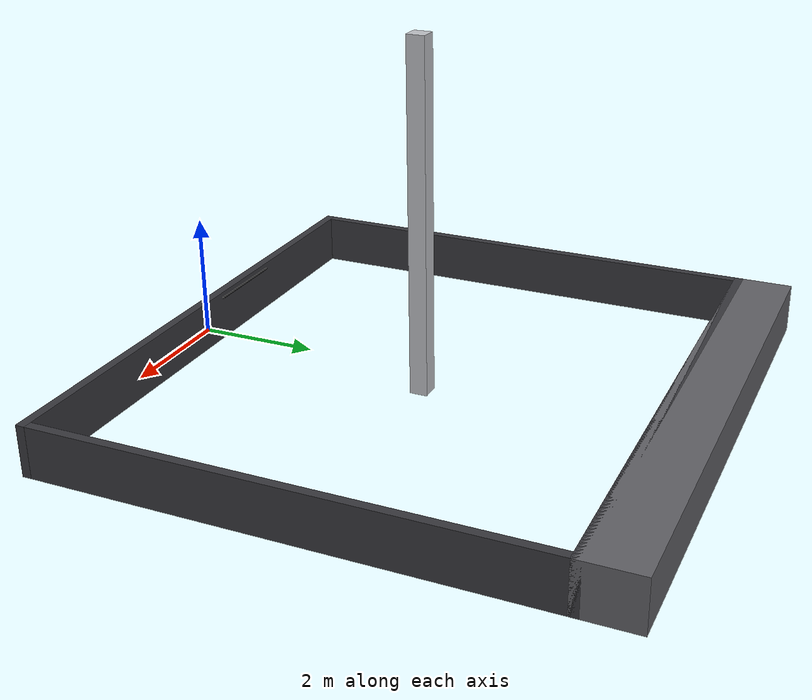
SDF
<?xml version='1.0'?>
<sdf version='1.8'>
  <model name='lunabotics_arena'>
    <pose>0 0 0 0 0 0</pose>
    <static>true</static>

    <!-- Front (south) wall: carries the 80/20 fiducial rail, Y = 0 -->
    <link name='Wall_S'>
      <pose>0 -0.075 0.075 0 0 0</pose>
      <collision name='Wall_S_Collision'>
        <geometry>
          <box>
            <size>9.44 0.15 0.85</size>
          </box>
        </geometry>
      </collision>
      <visual name='Wall_S_Visual'>
        <geometry>
          <box>
            <size>9.44 0.15 0.85</size>
          </box>
        </geometry>
        <material>
          <ambient>0.15 0.15 0.16 1</ambient>
          <diffuse>0.22 0.22 0.24 1</diffuse>
          <specular>0.05 0.05 0.05 1</specular>
        </material>
      </visual>
    </link>

    <!-- Rear (north) wall at the far edge of the regolith bed, Y = 8.10 -->
    <link name='Wall_N'>
      <pose>0 8.175 0.075 0 0 0</pose>
      <collision name='Wall_N_Collision'>
        <geometry>
          <box>
            <size>9.44 0.15 0.85</size>
          </box>
        </geometry>
      </collision>
      <visual name='Wall_N_Visual'>
        <geometry>
          <box>
            <size>9.44 0.15 0.85</size>
          </box>
        </geometry>
        <material>
          <ambient>0.15 0.15 0.16 1</ambient>
          <diffuse>0.22 0.22 0.24 1</diffuse>
          <specular>0.05 0.05 0.05 1</specular>
        </material>
      </visual>
    </link>

    <!-- West wall, X = -4.57 -->
    <link name='Wall_W'>
      <pose>-4.645 4.05 0.075 0 0 1.5708</pose>
      <collision name='Wall_W_Collision'>
        <geometry>
          <box>
            <size>8.10 0.15 0.85</size>
          </box>
        </geometry>
      </collision>
      <visual name='Wall_W_Visual'>
        <geometry>
          <box>
            <size>8.10 0.15 0.85</size>
          </box>
        </geometry>
        <material>
          <ambient>0.15 0.15 0.16 1</ambient>
          <diffuse>0.22 0.22 0.24 1</diffuse>
          <specular>0.05 0.05 0.05 1</specular>
        </material>
      </visual>
    </link>

    <!-- East wall, X = 4.57 (ingress side) -->
    <link name='Wall_E'>
      <pose>4.645 4.05 0.075 0 0 1.5708</pose>
      <collision name='Wall_E_Collision'>
        <geometry>
          <box>
            <size>8.10 0.15 0.85</size>
          </box>
        </geometry>
      </collision>
      <visual name='Wall_E_Visual'>
        <geometry>
          <box>
            <size>8.10 0.15 0.85</size>
          </box>
        </geometry>
        <material>
          <ambient>0.15 0.15 0.16 1</ambient>
          <diffuse>0.22 0.22 0.24 1</diffuse>
          <specular>0.05 0.05 0.05 1</specular>
        </material>
      </visual>
    </link>

    <!-- Judge platform: 1.00 m deep strip north of the regolith bed -->
    <link name='Judge_Platform'>
      <pose>0 8.60 0.075 0 0 0</pose>
      <collision name='Judge_Platform_Collision'>
        <geometry>
          <box>
            <size>9.44 1.00 0.85</size>
          </box>
        </geometry>
      </collision>
      <visual name='Judge_Platform_Visual'>
        <geometry>
          <box>
            <size>9.44 1.00 0.85</size>
          </box>
        </geometry>
        <material>
          <ambient>0.28 0.28 0.30 1</ambient>
          <diffuse>0.38 0.38 0.40 1</diffuse>
          <specular>0.05 0.05 0.05 1</specular>
        </material>
      </visual>
    </link>

    <link name='Fiducial_Rail'>
      <pose>-1.25 0.0127 0.40 0 0 0</pose>
      <collision name='Fiducial_Rail_Collision'>
        <geometry>
          <box>
            <size>1.5 0.0254 0.0254</size>
          </box>
        </geometry>
      </collision>
      <visual name='Fiducial_Rail_Visual'>
        <geometry>
          <box>
            <size>1.5 0.0254 0.0254</size>
          </box>
        </geometry>
        <material>
          <ambient>0.02 0.02 0.02 1</ambient>
          <diffuse>0.05 0.05 0.05 1</diffuse>
          <specular>0.0 0.0 0.0 1</specular>
        </material>
      </visual>
    </link>

    <link name='Center_Column'>
      <pose>0 4.05 2.575 0 0 0</pose>
      <collision name='Center_Column_Collision'>
        <geometry>
          <box>
            <size>0.30 0.30 5.85</size>
          </box>
        </geometry>
      </collision>
      <visual name='Center_Column_Visual'>
        <geometry>
          <box>
            <size>0.30 0.30 5.85</size>
          </box>
        </geometry>
        <material>
          <ambient>0.60 0.61 0.62 1</ambient>
          <diffuse>0.75 0.76 0.78 1</diffuse>
          <specular>0.1 0.1 0.1 1</specular>
        </material>
      </visual>
    </link>

    <!-- Fixed joints connecting the walls (leave the loop open) -->
    <joint name="joint_wall_s_w" type="fixed">
      <parent>Wall_S</parent>
      <child>Wall_W</child>
    </joint>

    <joint name="joint_wall_w_n" type="fixed">
      <parent>Wall_W</parent>
      <child>Wall_N</child>
    </joint>

    <joint name="joint_wall_n_e" type="fixed">
      <parent>Wall_N</parent>
      <child>Wall_E</child>
    </joint>

    <joint name="joint_wall_n_platform" type="fixed">
      <parent>Wall_N</parent>
      <child>Judge_Platform</child>
    </joint>

    <joint name="joint_wall_s_rail" type="fixed">
      <parent>Wall_S</parent>
      <child>Fiducial_Rail</child>
    </joint>

    <joint name="joint_wall_s_column" type="fixed">
      <parent>Wall_S</parent>
      <child>Center_Column</child>
    </joint>

  </model>
</sdf>
